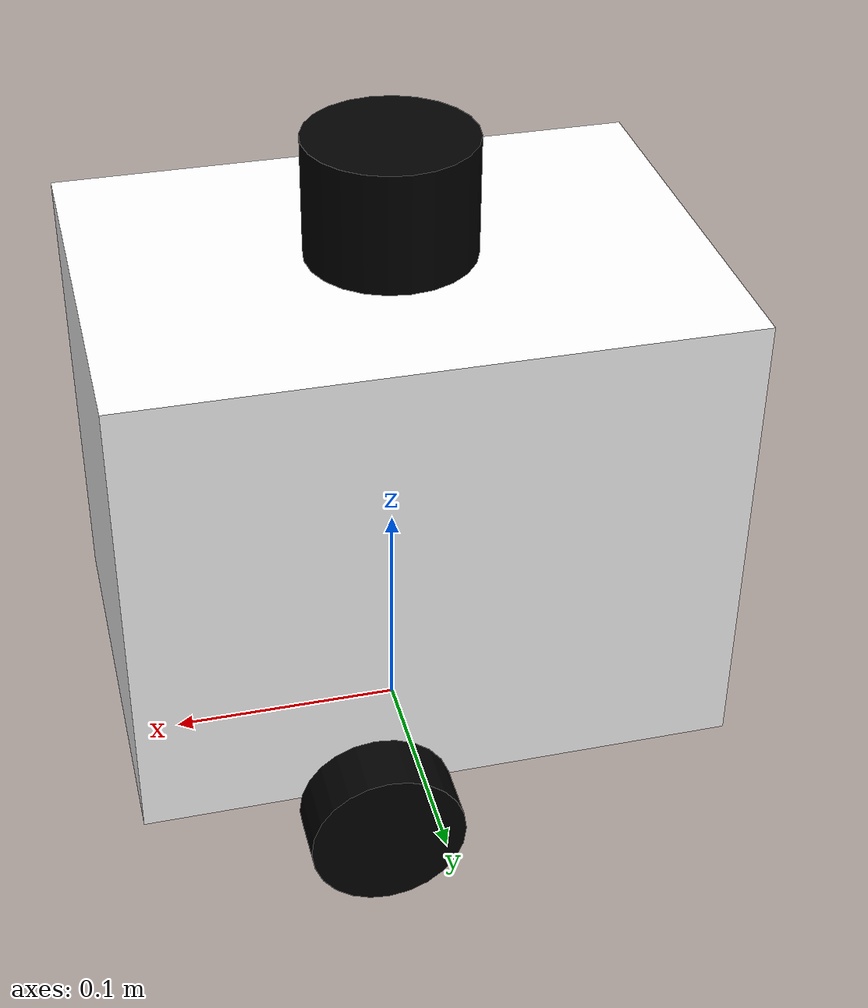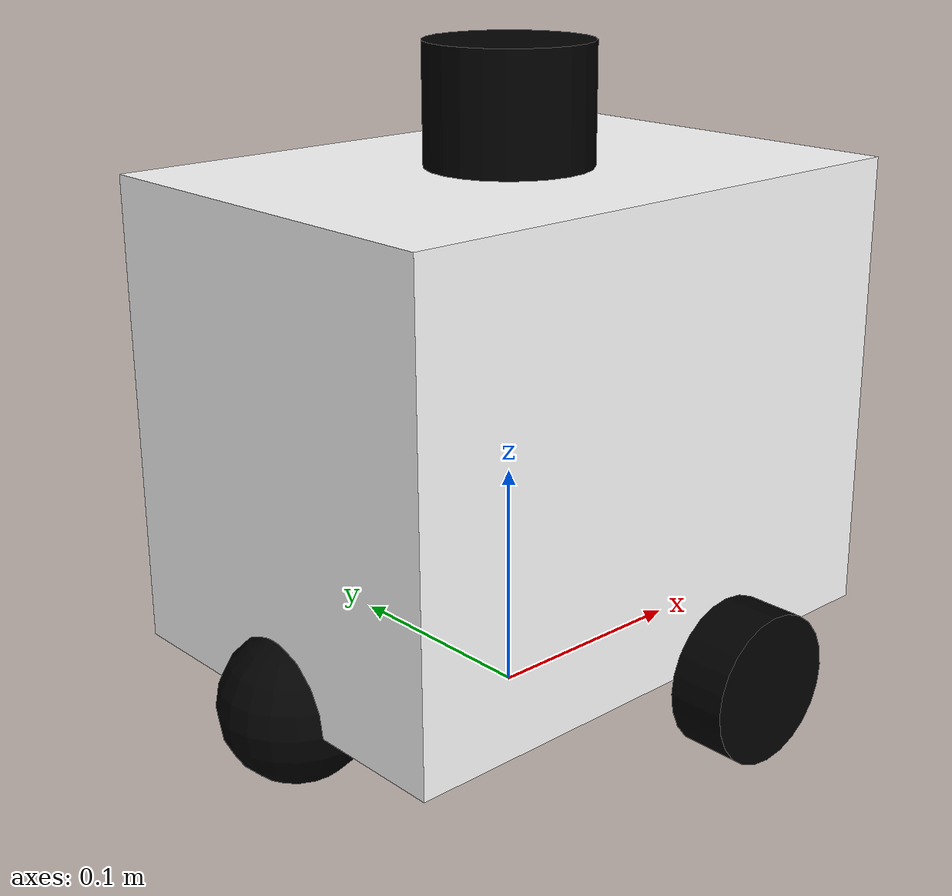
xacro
<?xml version="1.0"?>
<robot name="simple_robot" xmlns:xacro="http://ros.org/wiki/xacro">

  <xacro:property name="width" value="0.18" />
  <xacro:property name="length" value="0.25" />
  <xacro:property name="height" value="0.2" />
  <xacro:property name="caster_dia" value="0.02" />
  <xacro:property name="wheel_dia" value="0.064" />
  <xacro:property name="wheel_len" value="0.025" />
  <xacro:property name="wheel_separation" value="0.22" />
  <xacro:property name="lidar_h" value="0.05" />
  <xacro:property name="lidar_dia" value="0.07" />
  <xacro:property name="update_rate" value="30" />

  <material name="black">
    <color rgba="0 0 0 1"/>
  </material>

  <material name="white">
    <color rgba="1 1 1 1"/>
  </material>

  <material name="blue">
    <color rgba="0 0 1 1"/>
  </material>

  <!-- inertia -->
  <xacro:macro name="default_inertial" params="mass">
    <inertial>
      <mass value="${mass}" />
      <inertia ixx="${1*mass}" ixy="0.0" ixz="0.0" iyy="${1*mass}" iyz="0.0" izz="${1*mass}" />
    </inertial>
  </xacro:macro>

  <xacro:macro name="box_inertial" params="m x y z">
    <inertial>
      <mass value="${m}" />
      <inertia  ixx="${m*(y*y+z*z)/12}" ixy = "0" ixz = "0"
        iyy="${m*(x*x+z*z)/12}" iyz = "0"
        izz="${m*(x*x+z*z)/12}"
      />
    </inertial>
  </xacro:macro>

  <xacro:macro name="cylinder_inertia" params="m r h">
    <inertial>
      <mass value="${m}" />
      <inertia  ixx="${m*(3*r*r+h*h)/12}" ixy = "0" ixz = "0"
      iyy="${m*(3*r*r+h*h)/12}" iyz = "0"
      izz="${m*r*r/2}"
      />
    </inertial>
  </xacro:macro>

  <xacro:macro name="sphere_inertia" params="m r">
    <inertial>
      <mass value="${m}" />
      <inertia  ixx="${2*m*r*r/5}" ixy = "0" ixz = "0"
        iyy="${2*m*r*r/5}" iyz = "0"
        izz="${2*m*r*r/5}"
      />
    </inertial>
  </xacro:macro>

  <!-- base link -->
  <link name="base_link">
    <visual>
      <geometry>
        <box size="${length} ${width} ${height}"/>
      </geometry>
      <origin rpy="0 0 0" xyz="0 0 ${height/2+wheel_dia/2}"/>
      <material name="white"/>
    </visual>
    <collision>
      <geometry>
        <box size="${length} ${width} ${height}"/>
      </geometry>
      <origin rpy="0 0 0" xyz="0 0 ${height/2+wheel_dia/2}"/>
    </collision>
    <xacro:box_inertial m="10" x="${length}" y="${width}" z="${height}"/>
  </link>

  <gazebo reference="base_link">
    <material>Gazebo/White</material>
    <mu1>0.2</mu1>
    <mu2>0.2</mu2>
    <selfCollide>false</selfCollide>
    <gravity>true</gravity>
  </gazebo>

  <!-- imu -->
  <link name="imu_link">
  </link>
  <joint name="base_to_imu" type="fixed">
    <parent link="base_link"/>
    <child link="imu_link"/>
    <origin rpy="0 0 0" xyz="0 0 ${wheel_dia/2+height/2}"/>
  </joint>

  <!-- lidar -->
  <link name="lidar_link">
    <visual>
      <geometry>
        <cylinder length="${lidar_h}" radius="${lidar_dia/2}"/>
      </geometry>
      <origin rpy="0 0 0" xyz="0 0 0"/>
      <material name="black"/>
    </visual>
    <collision>
      <geometry>
        <cylinder length="${lidar_h}" radius="${lidar_dia/2}"/>
      </geometry>
      <origin rpy="0 0 0" xyz="0 0 0"/>
    </collision>
    <xacro:cylinder_inertia m=".3" r="${lidar_dia/2}" h="${lidar_h}"/>
  </link>
  <joint name="base_to_lidar" type="fixed">
    <parent link="base_link"/>
    <child link="lidar_link"/>
    <origin rpy="0 0 0" xyz="0 0 ${wheel_dia/2+height+lidar_h/2}"/>
  </joint>
  <gazebo reference="lidar_link">
    <material>Gazebo/Grey</material>
  </gazebo>

  <!-- caster wheel -->
  <link name="caster_wheel">
    <visual>
      <geometry>
        <sphere radius="${wheel_dia/2}"/>
      </geometry>
      <origin rpy="0 0 0" xyz="0 0 0"/>
      <material name="black"/>
    </visual>
    <collision>
      <geometry>
        <sphere radius="${wheel_dia/2}"/>
      </geometry>
      <origin rpy="0 0 0" xyz="0 0 0"/>
    </collision>
   <xacro:sphere_inertia m=".01" r="${wheel_dia/2}"/>
  </link>

  <joint name="base_to_caster_wheel" type="fixed">
    <parent link="base_link"/>
    <child link="caster_wheel"/>
    <origin rpy="0 0 0" xyz="-${length/2-caster_dia/2} 0 ${wheel_dia/2}"/>
  </joint>

  <gazebo reference="caster_wheel">
    <mu1 value="0.0001"/>
    <mu2 value="0.0001"/>
    <kp value="10000000.0" />
    <kd value="1.0" />
    <material>Gazebo/Grey</material>
  </gazebo>

  <xacro:macro name="wheel" params="prefix reflect">

    <link name="${prefix}_wheel">
      <visual>
        <geometry>
          <cylinder length="${wheel_len}" radius="${wheel_dia/2}"/>
        </geometry>
        <origin rpy="0 0 0" xyz="0 0 0"/>
        <material name="black"/>
      </visual>
      <collision>
        <geometry>
          <cylinder length="${wheel_len}" radius="${wheel_dia/2}"/>
        </geometry>
      </collision>
      <xacro:default_inertial mass="0.1"/>
    </link>
    <joint name="base_to_${prefix}_wheel" type="continuous">
      <parent link="base_link"/>
      <child link="${prefix}_wheel"/>
      <axis xyz="0 0 -1"/>
      <origin rpy="1.5708 0 0" xyz="0.03 ${wheel_separation/2*reflect} ${wheel_dia/2}"/>
    </joint>

    <gazebo reference="${prefix}_wheel">
      <mu1 value="200.0"/>
      <mu2 value="100.0"/>
      <kp value="10000000.0" />
      <kd value="1.0" />
      <material>Gazebo/Grey</material>
    </gazebo>

    <transmission name="${prefix}_wheel_trans">
      <type>transmission_interface/SimpleTransmission</type>
      <actuator name="${prefix}_wheel_motor">
      <hardwareInterface>hardware_interface/VelocityJointInterface</hardwareInterface>
        <mechanicalReduction>1</mechanicalReduction>
      </actuator>
      <joint name="base_to_${prefix}_wheel">
        <hardwareInterface>hardware_interface/VelocityJointInterface</hardwareInterface>
      </joint>
    </transmission>

  </xacro:macro>

  <xacro:wheel prefix="right" reflect="-1"/>
  <xacro:wheel prefix="left" reflect="1"/>

  <!-- Gazebo plugin for ROS Control -->
  <gazebo>
    <plugin name="gazebo_ros_control" filename="libgazebo_ros_control.so">
      <robotNamespace>/</robotNamespace>
    </plugin>
  </gazebo>

  <!-- imu  -->
  <gazebo reference="imu_link">
    <gravity>true</gravity>
    <sensor name="imu_sensor" type="imu">
      <always_on>true</always_on>
      <update_rate>${update_rate}</update_rate>
      <visualize>true</visualize>
      <topic>__default_topic__</topic>
      <plugin filename="libgazebo_ros_imu_sensor.so" name="imu_plugin">
        <topicName>imu</topicName>
        <bodyName>imu_link</bodyName>
        <updateRateHZ>10.0</updateRateHZ>
        <gaussianNoise>0.01</gaussianNoise>
        <xyzOffset>0 0 0</xyzOffset>
        <rpyOffset>0 0 0</rpyOffset>
        <frameName>imu_link</frameName>
        <initialOrientationAsReference>false</initialOrientationAsReference>
      </plugin>
      <pose>0 0 0 0 0 0</pose>
    </sensor>
  </gazebo>

  <!-- Lidar -->
  <gazebo reference="lidar_link">
    <sensor type="gpu_ray" name="RP_lidar">
      <pose>0 0 0 0 0 0</pose>
      <visualize>false</visualize>
      <update_rate>${update_rate}</update_rate>
      <ray>
        <scan>
          <horizontal>
            <samples>720</samples>
            <resolution>1</resolution>
            <min_angle>-3.14159</min_angle>
            <max_angle>3.14159</max_angle>
          </horizontal>
        </scan>
        <range>
          <min>0.15</min>
          <max>6.0</max>
          <resolution>0.5</resolution>
        </range>
        <noise>
          <type>gaussian</type>
          <mean>0.0</mean>
          <stddev>0.01</stddev>
        </noise>
      </ray>
      <plugin name="gazebo_ros_head_hokuyo_controller" filename="libgazebo_ros_gpu_laser.so">
        <topicName>/scan</topicName>
        <frameName>lidar_link</frameName>
      </plugin>
    </sensor>
  </gazebo>

</robot>
